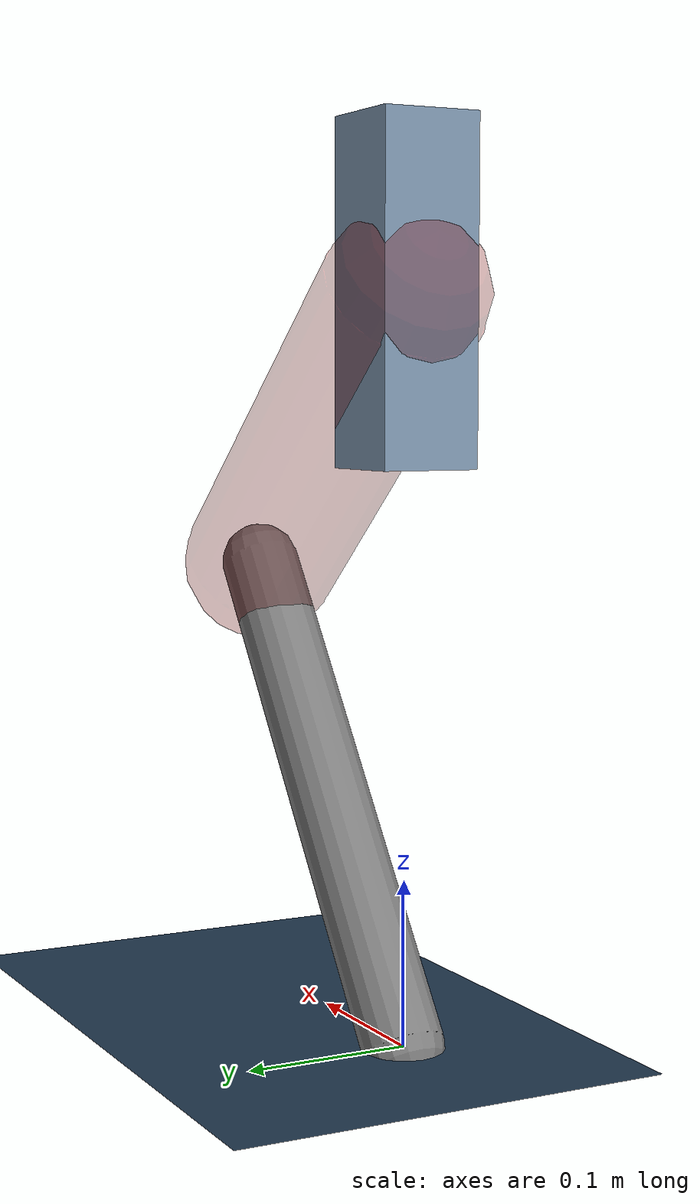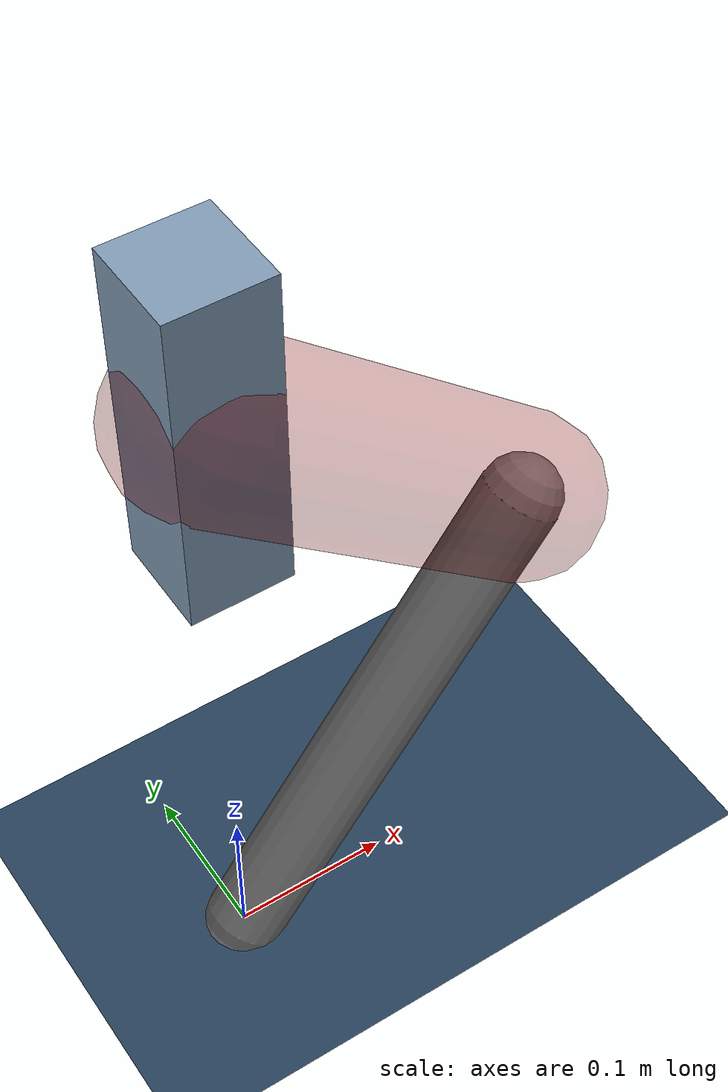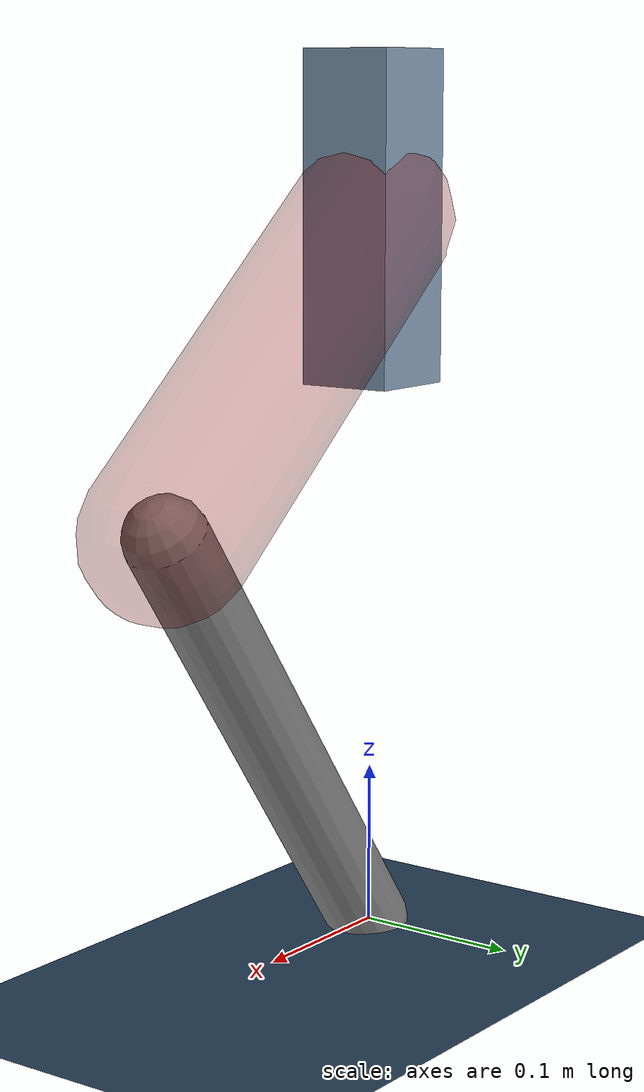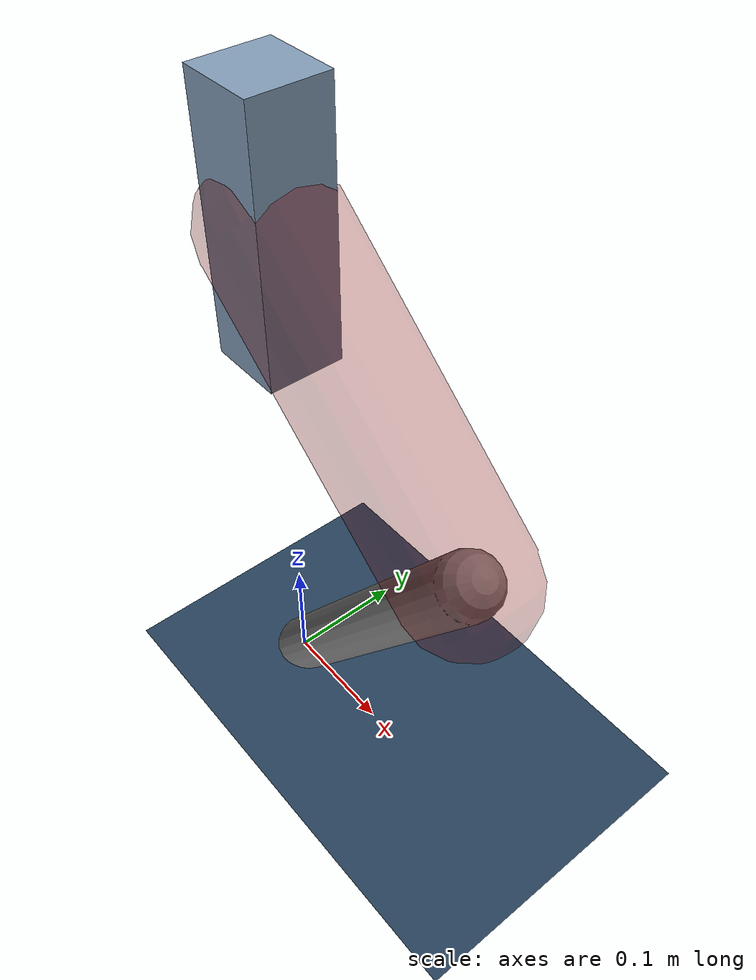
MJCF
<mujoco model="Hopper2D">
	<compiler inertiafromgeom="true" angle="radian" />
	<option timestep="0.001" integrator="implicit" cone="elliptic" solver="Newton" tolerance="1e-10" />

	<default>
		<geom contype="1" conaffinity="1" condim="3" friction="2 0.005 0.0001" solref="0.005 1" />
		<joint limited="true" damping="0.1" />
	</default>

	<asset>
		<texture name="skybox" type="skybox" builtin="gradient" rgb1=".4 .6 .8" rgb2="0 0 0" width="800" height="800" />
		<texture name="grid" type="2d" builtin="checker" rgb1=".1 .2 .3" rgb2=".2 .3 .4" width="300" height="300" mark="edge" markrgb=".2 .3 .4" />
		<material name="ground" texture="grid" texrepeat="1 1" texuniform="true" reflectance="0.1" />
		<material name="leg" rgba="0.5 0.6 0.7 1" />
	</asset>

	<worldbody>

		<geom name="floor" type="plane" size="5 5 0.25" material="ground" />

		<light directional="false" diffuse="0.8 0.8 0.8" specular="0.3 0.3 0.3" pos="0 0 2" dir="0 0 -1" />
		<light mode="targetbodycom" target="base" directional="false" diffuse="0.8 0.8 0.8" specular="0.3 0.3 0.3" pos="0 0 2" dir="0 0 -1" />

		<camera name="fixed" pos="0 -2 1" xyaxes="1 0 0 0 0 1" />
		<camera name="tracking" mode="trackcom" pos="0 -3 1" />

		<body name="root" pos="0 0 0.4408709794334196">
			<joint name="slide_x" type="slide" axis="1 0 0" range="-100 100" />
			<joint name="slide_z" type="slide" axis="0 0 1" range="0 10" />

			<body name="base" pos="0 0 0">
				<geom name="torso" type="box" size="0.03 0.03 0.1" mass="2.473" material="leg" />

				<body name="link1" pos="0 0 0" euler="0 0.7035872804357907 0">
					<joint type="hinge" axis="0 -1 0" pos="0 0 0" name="hinge1" limited="true" range="-3.14 3.14" stiffness="0" damping="0.1" />
					<geom name="thigh" type="capsule" fromto="0 0 0 0.25860201169202446 0 0" size="0.05" rgba="0.5 0 0 0.3" mass="0.8787652303992636" />

					<body name="link2" pos="0.25860201169202446 0 0" euler="0 1.4917685638956186 0">
						<joint type="hinge" axis="0 -1 0" pos="0 0 0" name="hinge2" limited="true" range="-3.14 3.14" stiffness="0" damping="0.1" />
						<geom name="shank" type="capsule" fromto="0 0 0 0.3372282210549498 0 0" size="0.025" mass="0.5135825768439598" />

					</body>
				</body>
			</body>
		</body>
	</worldbody>

	<actuator>
		<motor name="torque1" joint="hinge1" ctrlrange="-121.32818478215914 121.32818478215914" ctrllimited="true" gear="1" />
		<motor name="torque2" joint="hinge2" ctrlrange="-38.14175328478391 38.14175328478391" ctrllimited="true" gear="1" />
	</actuator>
</mujoco>
